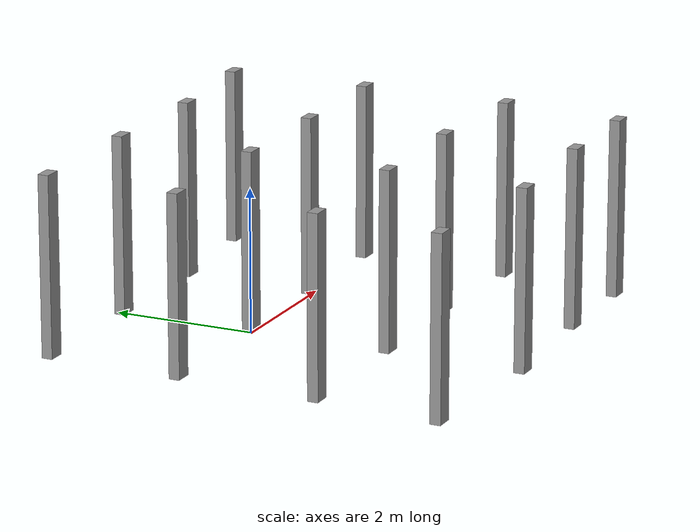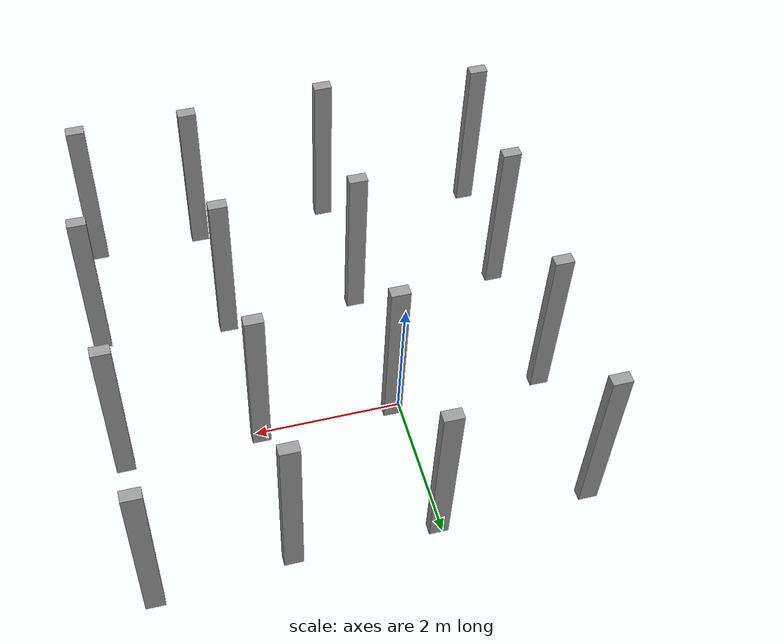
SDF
<?xml version='1.0'?>
<sdf version='1.7'>
  <model name='formation_with_obstacles'>
    <link name='Wall_0'>
      <pose>-1.99 0.045 0 0 -0 0</pose>
      <self_collide>0</self_collide>
      <enable_wind>0</enable_wind>
      <kinematic>0</kinematic>
      <visual name='Wall_0_Visual'>
        <pose>0 0 1.25 0 -0 0</pose>
        <geometry>
          <box>
            <size>0.25 0.15 2.5</size>
          </box>
        </geometry>
        <material>
          <script>
            <uri>file://media/materials/scripts/gazebo.material</uri>
            <name>Gazebo/Grey</name>
          </script>
          <ambient>1 1 1 1</ambient>
          <shader type='pixel'/>
        </material>
        <meta>
          <layer>0</layer>
        </meta>
        <transparency>0</transparency>
        <cast_shadows>1</cast_shadows>
      </visual>
      <collision name='Wall_0_Collision'>
        <laser_retro>0</laser_retro>
        <max_contacts>10</max_contacts>
        <pose>0 0 1.25 0 -0 0</pose>
        <geometry>
          <box>
            <size>0.25 0.15 2.5</size>
          </box>
        </geometry>
        <surface>
          <friction>
            <ode>
              <mu>1</mu>
              <mu2>1</mu2>
              <fdir1>0 0 0</fdir1>
              <slip1>0</slip1>
              <slip2>0</slip2>
            </ode>
            <torsional>
              <coefficient>1</coefficient>
              <patch_radius>0</patch_radius>
              <surface_radius>0</surface_radius>
              <use_patch_radius>1</use_patch_radius>
              <ode>
                <slip>0</slip>
              </ode>
            </torsional>
          </friction>
          <bounce>
            <restitution_coefficient>0</restitution_coefficient>
            <threshold>1e+06</threshold>
          </bounce>
          <contact>
            <collide_without_contact>0</collide_without_contact>
            <collide_without_contact_bitmask>1</collide_without_contact_bitmask>
            <collide_bitmask>1</collide_bitmask>
            <ode>
              <soft_cfm>0</soft_cfm>
              <soft_erp>0.2</soft_erp>
              <kp>1e+13</kp>
              <kd>1</kd>
              <max_vel>0.01</max_vel>
              <min_depth>0</min_depth>
            </ode>
            <bullet>
              <split_impulse>1</split_impulse>
              <split_impulse_penetration_threshold>-0.01</split_impulse_penetration_threshold>
              <soft_cfm>0</soft_cfm>
              <soft_erp>0.2</soft_erp>
              <kp>1e+13</kp>
              <kd>1</kd>
            </bullet>
          </contact>
        </surface>
      </collision>
    </link>
    <link name='Wall_10'>
      <pose>2 -1.915 0 0 -0 0</pose>
      <self_collide>0</self_collide>
      <enable_wind>0</enable_wind>
      <kinematic>0</kinematic>
      <visual name='Wall_10_Visual'>
        <pose>0 0 1.25 0 -0 0</pose>
        <geometry>
          <box>
            <size>0.25 0.15 2.5</size>
          </box>
        </geometry>
        <material>
          <script>
            <uri>file://media/materials/scripts/gazebo.material</uri>
            <name>Gazebo/Grey</name>
          </script>
          <ambient>1 1 1 1</ambient>
          <shader type='pixel'/>
        </material>
        <meta>
          <layer>0</layer>
        </meta>
        <transparency>0</transparency>
        <cast_shadows>1</cast_shadows>
      </visual>
      <collision name='Wall_10_Collision'>
        <laser_retro>0</laser_retro>
        <max_contacts>10</max_contacts>
        <pose>0 0 1.25 0 -0 0</pose>
        <geometry>
          <box>
            <size>0.25 0.15 2.5</size>
          </box>
        </geometry>
        <surface>
          <friction>
            <ode>
              <mu>1</mu>
              <mu2>1</mu2>
              <fdir1>0 0 0</fdir1>
              <slip1>0</slip1>
              <slip2>0</slip2>
            </ode>
            <torsional>
              <coefficient>1</coefficient>
              <patch_radius>0</patch_radius>
              <surface_radius>0</surface_radius>
              <use_patch_radius>1</use_patch_radius>
              <ode>
                <slip>0</slip>
              </ode>
            </torsional>
          </friction>
          <bounce>
            <restitution_coefficient>0</restitution_coefficient>
            <threshold>1e+06</threshold>
          </bounce>
          <contact>
            <collide_without_contact>0</collide_without_contact>
            <collide_without_contact_bitmask>1</collide_without_contact_bitmask>
            <collide_bitmask>1</collide_bitmask>
            <ode>
              <soft_cfm>0</soft_cfm>
              <soft_erp>0.2</soft_erp>
              <kp>1e+13</kp>
              <kd>1</kd>
              <max_vel>0.01</max_vel>
              <min_depth>0</min_depth>
            </ode>
            <bullet>
              <split_impulse>1</split_impulse>
              <split_impulse_penetration_threshold>-0.01</split_impulse_penetration_threshold>
              <soft_cfm>0</soft_cfm>
              <soft_erp>0.2</soft_erp>
              <kp>1e+13</kp>
              <kd>1</kd>
            </bullet>
          </contact>
        </surface>
      </collision>
    </link>
    <link name='Wall_12'>
      <pose>-1.97 1.925 0 0 -0 0</pose>
      <self_collide>0</self_collide>
      <enable_wind>0</enable_wind>
      <kinematic>0</kinematic>
      <visual name='Wall_12_Visual'>
        <pose>0 0 1.25 0 -0 0</pose>
        <geometry>
          <box>
            <size>0.25 0.15 2.5</size>
          </box>
        </geometry>
        <material>
          <script>
            <uri>file://media/materials/scripts/gazebo.material</uri>
            <name>Gazebo/Grey</name>
          </script>
          <ambient>1 1 1 1</ambient>
          <shader type='pixel'/>
        </material>
        <meta>
          <layer>0</layer>
        </meta>
        <transparency>0</transparency>
        <cast_shadows>1</cast_shadows>
      </visual>
      <collision name='Wall_12_Collision'>
        <laser_retro>0</laser_retro>
        <max_contacts>10</max_contacts>
        <pose>0 0 1.25 0 -0 0</pose>
        <geometry>
          <box>
            <size>0.25 0.15 2.5</size>
          </box>
        </geometry>
        <surface>
          <friction>
            <ode>
              <mu>1</mu>
              <mu2>1</mu2>
              <fdir1>0 0 0</fdir1>
              <slip1>0</slip1>
              <slip2>0</slip2>
            </ode>
            <torsional>
              <coefficient>1</coefficient>
              <patch_radius>0</patch_radius>
              <surface_radius>0</surface_radius>
              <use_patch_radius>1</use_patch_radius>
              <ode>
                <slip>0</slip>
              </ode>
            </torsional>
          </friction>
          <bounce>
            <restitution_coefficient>0</restitution_coefficient>
            <threshold>1e+06</threshold>
          </bounce>
          <contact>
            <collide_without_contact>0</collide_without_contact>
            <collide_without_contact_bitmask>1</collide_without_contact_bitmask>
            <collide_bitmask>1</collide_bitmask>
            <ode>
              <soft_cfm>0</soft_cfm>
              <soft_erp>0.2</soft_erp>
              <kp>1e+13</kp>
              <kd>1</kd>
              <max_vel>0.01</max_vel>
              <min_depth>0</min_depth>
            </ode>
            <bullet>
              <split_impulse>1</split_impulse>
              <split_impulse_penetration_threshold>-0.01</split_impulse_penetration_threshold>
              <soft_cfm>0</soft_cfm>
              <soft_erp>0.2</soft_erp>
              <kp>1e+13</kp>
              <kd>1</kd>
            </bullet>
          </contact>
        </surface>
      </collision>
    </link>
    <link name='Wall_14'>
      <pose>0.05 1.945 0 0 -0 0</pose>
      <self_collide>0</self_collide>
      <enable_wind>0</enable_wind>
      <kinematic>0</kinematic>
      <visual name='Wall_14_Visual'>
        <pose>0 0 1.25 0 -0 0</pose>
        <geometry>
          <box>
            <size>0.25 0.15 2.5</size>
          </box>
        </geometry>
        <material>
          <script>
            <uri>file://media/materials/scripts/gazebo.material</uri>
            <name>Gazebo/Grey</name>
          </script>
          <ambient>1 1 1 1</ambient>
          <shader type='pixel'/>
        </material>
        <meta>
          <layer>0</layer>
        </meta>
        <transparency>0</transparency>
        <cast_shadows>1</cast_shadows>
      </visual>
      <collision name='Wall_14_Collision'>
        <laser_retro>0</laser_retro>
        <max_contacts>10</max_contacts>
        <pose>0 0 1.25 0 -0 0</pose>
        <geometry>
          <box>
            <size>0.25 0.15 2.5</size>
          </box>
        </geometry>
        <surface>
          <friction>
            <ode>
              <mu>1</mu>
              <mu2>1</mu2>
              <fdir1>0 0 0</fdir1>
              <slip1>0</slip1>
              <slip2>0</slip2>
            </ode>
            <torsional>
              <coefficient>1</coefficient>
              <patch_radius>0</patch_radius>
              <surface_radius>0</surface_radius>
              <use_patch_radius>1</use_patch_radius>
              <ode>
                <slip>0</slip>
              </ode>
            </torsional>
          </friction>
          <bounce>
            <restitution_coefficient>0</restitution_coefficient>
            <threshold>1e+06</threshold>
          </bounce>
          <contact>
            <collide_without_contact>0</collide_without_contact>
            <collide_without_contact_bitmask>1</collide_without_contact_bitmask>
            <collide_bitmask>1</collide_bitmask>
            <ode>
              <soft_cfm>0</soft_cfm>
              <soft_erp>0.2</soft_erp>
              <kp>1e+13</kp>
              <kd>1</kd>
              <max_vel>0.01</max_vel>
              <min_depth>0</min_depth>
            </ode>
            <bullet>
              <split_impulse>1</split_impulse>
              <split_impulse_penetration_threshold>-0.01</split_impulse_penetration_threshold>
              <soft_cfm>0</soft_cfm>
              <soft_erp>0.2</soft_erp>
              <kp>1e+13</kp>
              <kd>1</kd>
            </bullet>
          </contact>
        </surface>
      </collision>
    </link>
    <link name='Wall_16'>
      <pose>1.93 1.935 0 0 -0 0</pose>
      <self_collide>0</self_collide>
      <enable_wind>0</enable_wind>
      <kinematic>0</kinematic>
      <visual name='Wall_16_Visual'>
        <pose>0 0 1.25 0 -0 0</pose>
        <geometry>
          <box>
            <size>0.25 0.15 2.5</size>
          </box>
        </geometry>
        <material>
          <script>
            <uri>file://media/materials/scripts/gazebo.material</uri>
            <name>Gazebo/Grey</name>
          </script>
          <ambient>1 1 1 1</ambient>
          <shader type='pixel'/>
        </material>
        <meta>
          <layer>0</layer>
        </meta>
        <transparency>0</transparency>
        <cast_shadows>1</cast_shadows>
      </visual>
      <collision name='Wall_16_Collision'>
        <laser_retro>0</laser_retro>
        <max_contacts>10</max_contacts>
        <pose>0 0 1.25 0 -0 0</pose>
        <geometry>
          <box>
            <size>0.25 0.15 2.5</size>
          </box>
        </geometry>
        <surface>
          <friction>
            <ode>
              <mu>1</mu>
              <mu2>1</mu2>
              <fdir1>0 0 0</fdir1>
              <slip1>0</slip1>
              <slip2>0</slip2>
            </ode>
            <torsional>
              <coefficient>1</coefficient>
              <patch_radius>0</patch_radius>
              <surface_radius>0</surface_radius>
              <use_patch_radius>1</use_patch_radius>
              <ode>
                <slip>0</slip>
              </ode>
            </torsional>
          </friction>
          <bounce>
            <restitution_coefficient>0</restitution_coefficient>
            <threshold>1e+06</threshold>
          </bounce>
          <contact>
            <collide_without_contact>0</collide_without_contact>
            <collide_without_contact_bitmask>1</collide_without_contact_bitmask>
            <collide_bitmask>1</collide_bitmask>
            <ode>
              <soft_cfm>0</soft_cfm>
              <soft_erp>0.2</soft_erp>
              <kp>1e+13</kp>
              <kd>1</kd>
              <max_vel>0.01</max_vel>
              <min_depth>0</min_depth>
            </ode>
            <bullet>
              <split_impulse>1</split_impulse>
              <split_impulse_penetration_threshold>-0.01</split_impulse_penetration_threshold>
              <soft_cfm>0</soft_cfm>
              <soft_erp>0.2</soft_erp>
              <kp>1e+13</kp>
              <kd>1</kd>
            </bullet>
          </contact>
        </surface>
      </collision>
    </link>
    <link name='Wall_2'>
      <pose>-2 -1.935 0 0 -0 0</pose>
      <self_collide>0</self_collide>
      <enable_wind>0</enable_wind>
      <kinematic>0</kinematic>
      <visual name='Wall_2_Visual'>
        <pose>0 0 1.25 0 -0 0</pose>
        <geometry>
          <box>
            <size>0.25 0.15 2.5</size>
          </box>
        </geometry>
        <material>
          <script>
            <uri>file://media/materials/scripts/gazebo.material</uri>
            <name>Gazebo/Grey</name>
          </script>
          <ambient>1 1 1 1</ambient>
          <shader type='pixel'/>
        </material>
        <meta>
          <layer>0</layer>
        </meta>
        <transparency>0</transparency>
        <cast_shadows>1</cast_shadows>
      </visual>
      <collision name='Wall_2_Collision'>
        <laser_retro>0</laser_retro>
        <max_contacts>10</max_contacts>
        <pose>0 0 1.25 0 -0 0</pose>
        <geometry>
          <box>
            <size>0.25 0.15 2.5</size>
          </box>
        </geometry>
        <surface>
          <friction>
            <ode>
              <mu>1</mu>
              <mu2>1</mu2>
              <fdir1>0 0 0</fdir1>
              <slip1>0</slip1>
              <slip2>0</slip2>
            </ode>
            <torsional>
              <coefficient>1</coefficient>
              <patch_radius>0</patch_radius>
              <surface_radius>0</surface_radius>
              <use_patch_radius>1</use_patch_radius>
              <ode>
                <slip>0</slip>
              </ode>
            </torsional>
          </friction>
          <bounce>
            <restitution_coefficient>0</restitution_coefficient>
            <threshold>1e+06</threshold>
          </bounce>
          <contact>
            <collide_without_contact>0</collide_without_contact>
            <collide_without_contact_bitmask>1</collide_without_contact_bitmask>
            <collide_bitmask>1</collide_bitmask>
            <ode>
              <soft_cfm>0</soft_cfm>
              <soft_erp>0.2</soft_erp>
              <kp>1e+13</kp>
              <kd>1</kd>
              <max_vel>0.01</max_vel>
              <min_depth>0</min_depth>
            </ode>
            <bullet>
              <split_impulse>1</split_impulse>
              <split_impulse_penetration_threshold>-0.01</split_impulse_penetration_threshold>
              <soft_cfm>0</soft_cfm>
              <soft_erp>0.2</soft_erp>
              <kp>1e+13</kp>
              <kd>1</kd>
            </bullet>
          </contact>
        </surface>
      </collision>
    </link>
    <link name='Wall_2_clone'>
      <pose>-2.1076 -3.67731 0 0 -0 0</pose>
      <self_collide>0</self_collide>
      <enable_wind>0</enable_wind>
      <kinematic>0</kinematic>
      <visual name='Wall_2_Visual'>
        <pose>0 0 1.25 0 -0 0</pose>
        <geometry>
          <box>
            <size>0.25 0.15 2.5</size>
          </box>
        </geometry>
        <material>
          <script>
            <uri>file://media/materials/scripts/gazebo.material</uri>
            <name>Gazebo/Grey</name>
          </script>
          <ambient>1 1 1 1</ambient>
          <shader type='pixel'/>
        </material>
        <meta>
          <layer>0</layer>
        </meta>
        <transparency>0</transparency>
        <cast_shadows>1</cast_shadows>
      </visual>
      <collision name='Wall_2_Collision'>
        <laser_retro>0</laser_retro>
        <max_contacts>10</max_contacts>
        <pose>0 0 1.25 0 -0 0</pose>
        <geometry>
          <box>
            <size>0.25 0.15 2.5</size>
          </box>
        </geometry>
        <surface>
          <friction>
            <ode>
              <mu>1</mu>
              <mu2>1</mu2>
              <fdir1>0 0 0</fdir1>
              <slip1>0</slip1>
              <slip2>0</slip2>
            </ode>
            <torsional>
              <coefficient>1</coefficient>
              <patch_radius>0</patch_radius>
              <surface_radius>0</surface_radius>
              <use_patch_radius>1</use_patch_radius>
              <ode>
                <slip>0</slip>
              </ode>
            </torsional>
          </friction>
          <bounce>
            <restitution_coefficient>0</restitution_coefficient>
            <threshold>1e+06</threshold>
          </bounce>
          <contact>
            <collide_without_contact>0</collide_without_contact>
            <collide_without_contact_bitmask>1</collide_without_contact_bitmask>
            <collide_bitmask>1</collide_bitmask>
            <ode>
              <soft_cfm>0</soft_cfm>
              <soft_erp>0.2</soft_erp>
              <kp>1e+13</kp>
              <kd>1</kd>
              <max_vel>0.01</max_vel>
              <min_depth>0</min_depth>
            </ode>
            <bullet>
              <split_impulse>1</split_impulse>
              <split_impulse_penetration_threshold>-0.01</split_impulse_penetration_threshold>
              <soft_cfm>0</soft_cfm>
              <soft_erp>0.2</soft_erp>
              <kp>1e+13</kp>
              <kd>1</kd>
            </bullet>
          </contact>
        </surface>
      </collision>
    </link>
    <link name='Wall_2_clone_0'>
      <pose>0.131617 -3.86148 0 0 -0 0</pose>
      <self_collide>0</self_collide>
      <enable_wind>0</enable_wind>
      <kinematic>0</kinematic>
      <visual name='Wall_2_Visual'>
        <pose>0 0 1.25 0 -0 0</pose>
        <geometry>
          <box>
            <size>0.25 0.15 2.5</size>
          </box>
        </geometry>
        <material>
          <script>
            <uri>file://media/materials/scripts/gazebo.material</uri>
            <name>Gazebo/Grey</name>
          </script>
          <ambient>1 1 1 1</ambient>
          <shader type='pixel'/>
        </material>
        <meta>
          <layer>0</layer>
        </meta>
        <transparency>0</transparency>
        <cast_shadows>1</cast_shadows>
      </visual>
      <collision name='Wall_2_Collision'>
        <laser_retro>0</laser_retro>
        <max_contacts>10</max_contacts>
        <pose>0 0 1.25 0 -0 0</pose>
        <geometry>
          <box>
            <size>0.25 0.15 2.5</size>
          </box>
        </geometry>
        <surface>
          <friction>
            <ode>
              <mu>1</mu>
              <mu2>1</mu2>
              <fdir1>0 0 0</fdir1>
              <slip1>0</slip1>
              <slip2>0</slip2>
            </ode>
            <torsional>
              <coefficient>1</coefficient>
              <patch_radius>0</patch_radius>
              <surface_radius>0</surface_radius>
              <use_patch_radius>1</use_patch_radius>
              <ode>
                <slip>0</slip>
              </ode>
            </torsional>
          </friction>
          <bounce>
            <restitution_coefficient>0</restitution_coefficient>
            <threshold>1e+06</threshold>
          </bounce>
          <contact>
            <collide_without_contact>0</collide_without_contact>
            <collide_without_contact_bitmask>1</collide_without_contact_bitmask>
            <collide_bitmask>1</collide_bitmask>
            <ode>
              <soft_cfm>0</soft_cfm>
              <soft_erp>0.2</soft_erp>
              <kp>1e+13</kp>
              <kd>1</kd>
              <max_vel>0.01</max_vel>
              <min_depth>0</min_depth>
            </ode>
            <bullet>
              <split_impulse>1</split_impulse>
              <split_impulse_penetration_threshold>-0.01</split_impulse_penetration_threshold>
              <soft_cfm>0</soft_cfm>
              <soft_erp>0.2</soft_erp>
              <kp>1e+13</kp>
              <kd>1</kd>
            </bullet>
          </contact>
        </surface>
      </collision>
    </link>
    <link name='Wall_2_clone_1'>
      <pose>2.08625 -3.75915 0 0 -0 0</pose>
      <self_collide>0</self_collide>
      <enable_wind>0</enable_wind>
      <kinematic>0</kinematic>
      <visual name='Wall_2_Visual'>
        <pose>0 0 1.25 0 -0 0</pose>
        <geometry>
          <box>
            <size>0.25 0.15 2.5</size>
          </box>
        </geometry>
        <material>
          <script>
            <uri>file://media/materials/scripts/gazebo.material</uri>
            <name>Gazebo/Grey</name>
          </script>
          <ambient>1 1 1 1</ambient>
          <shader type='pixel'/>
        </material>
        <meta>
          <layer>0</layer>
        </meta>
        <transparency>0</transparency>
        <cast_shadows>1</cast_shadows>
      </visual>
      <collision name='Wall_2_Collision'>
        <laser_retro>0</laser_retro>
        <max_contacts>10</max_contacts>
        <pose>0 0 1.25 0 -0 0</pose>
        <geometry>
          <box>
            <size>0.25 0.15 2.5</size>
          </box>
        </geometry>
        <surface>
          <friction>
            <ode>
              <mu>1</mu>
              <mu2>1</mu2>
              <fdir1>0 0 0</fdir1>
              <slip1>0</slip1>
              <slip2>0</slip2>
            </ode>
            <torsional>
              <coefficient>1</coefficient>
              <patch_radius>0</patch_radius>
              <surface_radius>0</surface_radius>
              <use_patch_radius>1</use_patch_radius>
              <ode>
                <slip>0</slip>
              </ode>
            </torsional>
          </friction>
          <bounce>
            <restitution_coefficient>0</restitution_coefficient>
            <threshold>1e+06</threshold>
          </bounce>
          <contact>
            <collide_without_contact>0</collide_without_contact>
            <collide_without_contact_bitmask>1</collide_without_contact_bitmask>
            <collide_bitmask>1</collide_bitmask>
            <ode>
              <soft_cfm>0</soft_cfm>
              <soft_erp>0.2</soft_erp>
              <kp>1e+13</kp>
              <kd>1</kd>
              <max_vel>0.01</max_vel>
              <min_depth>0</min_depth>
            </ode>
            <bullet>
              <split_impulse>1</split_impulse>
              <split_impulse_penetration_threshold>-0.01</split_impulse_penetration_threshold>
              <soft_cfm>0</soft_cfm>
              <soft_erp>0.2</soft_erp>
              <kp>1e+13</kp>
              <kd>1</kd>
            </bullet>
          </contact>
        </surface>
      </collision>
    </link>
    <link name='Wall_2_clone_2'>
      <pose>3.62099 -3.75309 0 0 -0 0</pose>
      <self_collide>0</self_collide>
      <enable_wind>0</enable_wind>
      <kinematic>0</kinematic>
      <visual name='Wall_2_Visual'>
        <pose>0 0 1.25 0 -0 0</pose>
        <geometry>
          <box>
            <size>0.25 0.15 2.5</size>
          </box>
        </geometry>
        <material>
          <script>
            <uri>file://media/materials/scripts/gazebo.material</uri>
            <name>Gazebo/Grey</name>
          </script>
          <ambient>1 1 1 1</ambient>
          <shader type='pixel'/>
        </material>
        <meta>
          <layer>0</layer>
        </meta>
        <transparency>0</transparency>
        <cast_shadows>1</cast_shadows>
      </visual>
      <collision name='Wall_2_Collision'>
        <laser_retro>0</laser_retro>
        <max_contacts>10</max_contacts>
        <pose>0 0 1.25 0 -0 0</pose>
        <geometry>
          <box>
            <size>0.25 0.15 2.5</size>
          </box>
        </geometry>
        <surface>
          <friction>
            <ode>
              <mu>1</mu>
              <mu2>1</mu2>
              <fdir1>0 0 0</fdir1>
              <slip1>0</slip1>
              <slip2>0</slip2>
            </ode>
            <torsional>
              <coefficient>1</coefficient>
              <patch_radius>0</patch_radius>
              <surface_radius>0</surface_radius>
              <use_patch_radius>1</use_patch_radius>
              <ode>
                <slip>0</slip>
              </ode>
            </torsional>
          </friction>
          <bounce>
            <restitution_coefficient>0</restitution_coefficient>
            <threshold>1e+06</threshold>
          </bounce>
          <contact>
            <collide_without_contact>0</collide_without_contact>
            <collide_without_contact_bitmask>1</collide_without_contact_bitmask>
            <collide_bitmask>1</collide_bitmask>
            <ode>
              <soft_cfm>0</soft_cfm>
              <soft_erp>0.2</soft_erp>
              <kp>1e+13</kp>
              <kd>1</kd>
              <max_vel>0.01</max_vel>
              <min_depth>0</min_depth>
            </ode>
            <bullet>
              <split_impulse>1</split_impulse>
              <split_impulse_penetration_threshold>-0.01</split_impulse_penetration_threshold>
              <soft_cfm>0</soft_cfm>
              <soft_erp>0.2</soft_erp>
              <kp>1e+13</kp>
              <kd>1</kd>
            </bullet>
          </contact>
        </surface>
      </collision>
    </link>
    <link name='Wall_2_clone_3'>
      <pose>3.80035 -2.03301 0 0 -0 0</pose>
      <self_collide>0</self_collide>
      <enable_wind>0</enable_wind>
      <kinematic>0</kinematic>
      <visual name='Wall_2_Visual'>
        <pose>0 0 1.25 0 -0 0</pose>
        <geometry>
          <box>
            <size>0.25 0.15 2.5</size>
          </box>
        </geometry>
        <material>
          <script>
            <uri>file://media/materials/scripts/gazebo.material</uri>
            <name>Gazebo/Grey</name>
          </script>
          <ambient>1 1 1 1</ambient>
          <shader type='pixel'/>
        </material>
        <meta>
          <layer>0</layer>
        </meta>
        <transparency>0</transparency>
        <cast_shadows>1</cast_shadows>
      </visual>
      <collision name='Wall_2_Collision'>
        <laser_retro>0</laser_retro>
        <max_contacts>10</max_contacts>
        <pose>0 0 1.25 0 -0 0</pose>
        <geometry>
          <box>
            <size>0.25 0.15 2.5</size>
          </box>
        </geometry>
        <surface>
          <friction>
            <ode>
              <mu>1</mu>
              <mu2>1</mu2>
              <fdir1>0 0 0</fdir1>
              <slip1>0</slip1>
              <slip2>0</slip2>
            </ode>
            <torsional>
              <coefficient>1</coefficient>
              <patch_radius>0</patch_radius>
              <surface_radius>0</surface_radius>
              <use_patch_radius>1</use_patch_radius>
              <ode>
                <slip>0</slip>
              </ode>
            </torsional>
          </friction>
          <bounce>
            <restitution_coefficient>0</restitution_coefficient>
            <threshold>1e+06</threshold>
          </bounce>
          <contact>
            <collide_without_contact>0</collide_without_contact>
            <collide_without_contact_bitmask>1</collide_without_contact_bitmask>
            <collide_bitmask>1</collide_bitmask>
            <ode>
              <soft_cfm>0</soft_cfm>
              <soft_erp>0.2</soft_erp>
              <kp>1e+13</kp>
              <kd>1</kd>
              <max_vel>0.01</max_vel>
              <min_depth>0</min_depth>
            </ode>
            <bullet>
              <split_impulse>1</split_impulse>
              <split_impulse_penetration_threshold>-0.01</split_impulse_penetration_threshold>
              <soft_cfm>0</soft_cfm>
              <soft_erp>0.2</soft_erp>
              <kp>1e+13</kp>
              <kd>1</kd>
            </bullet>
          </contact>
        </surface>
      </collision>
    </link>
    <link name='Wall_2_clone_4'>
      <pose>3.76823 0.095392 0 0 -0 0</pose>
      <self_collide>0</self_collide>
      <enable_wind>0</enable_wind>
      <kinematic>0</kinematic>
      <visual name='Wall_2_Visual'>
        <pose>0 0 1.25 0 -0 0</pose>
        <geometry>
          <box>
            <size>0.25 0.15 2.5</size>
          </box>
        </geometry>
        <material>
          <script>
            <uri>file://media/materials/scripts/gazebo.material</uri>
            <name>Gazebo/Grey</name>
          </script>
          <ambient>1 1 1 1</ambient>
          <shader type='pixel'/>
        </material>
        <meta>
          <layer>0</layer>
        </meta>
        <transparency>0</transparency>
        <cast_shadows>1</cast_shadows>
      </visual>
      <collision name='Wall_2_Collision'>
        <laser_retro>0</laser_retro>
        <max_contacts>10</max_contacts>
        <pose>0 0 1.25 0 -0 0</pose>
        <geometry>
          <box>
            <size>0.25 0.15 2.5</size>
          </box>
        </geometry>
        <surface>
          <friction>
            <ode>
              <mu>1</mu>
              <mu2>1</mu2>
              <fdir1>0 0 0</fdir1>
              <slip1>0</slip1>
              <slip2>0</slip2>
            </ode>
            <torsional>
              <coefficient>1</coefficient>
              <patch_radius>0</patch_radius>
              <surface_radius>0</surface_radius>
              <use_patch_radius>1</use_patch_radius>
              <ode>
                <slip>0</slip>
              </ode>
            </torsional>
          </friction>
          <bounce>
            <restitution_coefficient>0</restitution_coefficient>
            <threshold>1e+06</threshold>
          </bounce>
          <contact>
            <collide_without_contact>0</collide_without_contact>
            <collide_without_contact_bitmask>1</collide_without_contact_bitmask>
            <collide_bitmask>1</collide_bitmask>
            <ode>
              <soft_cfm>0</soft_cfm>
              <soft_erp>0.2</soft_erp>
              <kp>1e+13</kp>
              <kd>1</kd>
              <max_vel>0.01</max_vel>
              <min_depth>0</min_depth>
            </ode>
            <bullet>
              <split_impulse>1</split_impulse>
              <split_impulse_penetration_threshold>-0.01</split_impulse_penetration_threshold>
              <soft_cfm>0</soft_cfm>
              <soft_erp>0.2</soft_erp>
              <kp>1e+13</kp>
              <kd>1</kd>
            </bullet>
          </contact>
        </surface>
      </collision>
    </link>
    <link name='Wall_2_clone_5'>
      <pose>3.69411 2.10546 0 0 -0 0</pose>
      <self_collide>0</self_collide>
      <enable_wind>0</enable_wind>
      <kinematic>0</kinematic>
      <visual name='Wall_2_Visual'>
        <pose>0 0 1.25 0 -0 0</pose>
        <geometry>
          <box>
            <size>0.25 0.15 2.5</size>
          </box>
        </geometry>
        <material>
          <script>
            <uri>file://media/materials/scripts/gazebo.material</uri>
            <name>Gazebo/Grey</name>
          </script>
          <ambient>1 1 1 1</ambient>
          <shader type='pixel'/>
        </material>
        <meta>
          <layer>0</layer>
        </meta>
        <transparency>0</transparency>
        <cast_shadows>1</cast_shadows>
      </visual>
      <collision name='Wall_2_Collision'>
        <laser_retro>0</laser_retro>
        <max_contacts>10</max_contacts>
        <pose>0 0 1.25 0 -0 0</pose>
        <geometry>
          <box>
            <size>0.25 0.15 2.5</size>
          </box>
        </geometry>
        <surface>
          <friction>
            <ode>
              <mu>1</mu>
              <mu2>1</mu2>
              <fdir1>0 0 0</fdir1>
              <slip1>0</slip1>
              <slip2>0</slip2>
            </ode>
            <torsional>
              <coefficient>1</coefficient>
              <patch_radius>0</patch_radius>
              <surface_radius>0</surface_radius>
              <use_patch_radius>1</use_patch_radius>
              <ode>
                <slip>0</slip>
              </ode>
            </torsional>
          </friction>
          <bounce>
            <restitution_coefficient>0</restitution_coefficient>
            <threshold>1e+06</threshold>
          </bounce>
          <contact>
            <collide_without_contact>0</collide_without_contact>
            <collide_without_contact_bitmask>1</collide_without_contact_bitmask>
            <collide_bitmask>1</collide_bitmask>
            <ode>
              <soft_cfm>0</soft_cfm>
              <soft_erp>0.2</soft_erp>
              <kp>1e+13</kp>
              <kd>1</kd>
              <max_vel>0.01</max_vel>
              <min_depth>0</min_depth>
            </ode>
            <bullet>
              <split_impulse>1</split_impulse>
              <split_impulse_penetration_threshold>-0.01</split_impulse_penetration_threshold>
              <soft_cfm>0</soft_cfm>
              <soft_erp>0.2</soft_erp>
              <kp>1e+13</kp>
              <kd>1</kd>
            </bullet>
          </contact>
        </surface>
      </collision>
    </link>
    <link name='Wall_4'>
      <pose>0.12 0.055 0 0 -0 0</pose>
      <self_collide>0</self_collide>
      <enable_wind>0</enable_wind>
      <kinematic>0</kinematic>
      <visual name='Wall_4_Visual'>
        <pose>0 0 1.25 0 -0 0</pose>
        <geometry>
          <box>
            <size>0.25 0.15 2.5</size>
          </box>
        </geometry>
        <material>
          <script>
            <uri>file://media/materials/scripts/gazebo.material</uri>
            <name>Gazebo/Grey</name>
          </script>
          <ambient>1 1 1 1</ambient>
          <shader type='pixel'/>
        </material>
        <meta>
          <layer>0</layer>
        </meta>
        <transparency>0</transparency>
        <cast_shadows>1</cast_shadows>
      </visual>
      <collision name='Wall_4_Collision'>
        <laser_retro>0</laser_retro>
        <max_contacts>10</max_contacts>
        <pose>0 0 1.25 0 -0 0</pose>
        <geometry>
          <box>
            <size>0.25 0.15 2.5</size>
          </box>
        </geometry>
        <surface>
          <friction>
            <ode>
              <mu>1</mu>
              <mu2>1</mu2>
              <fdir1>0 0 0</fdir1>
              <slip1>0</slip1>
              <slip2>0</slip2>
            </ode>
            <torsional>
              <coefficient>1</coefficient>
              <patch_radius>0</patch_radius>
              <surface_radius>0</surface_radius>
              <use_patch_radius>1</use_patch_radius>
              <ode>
                <slip>0</slip>
              </ode>
            </torsional>
          </friction>
          <bounce>
            <restitution_coefficient>0</restitution_coefficient>
            <threshold>1e+06</threshold>
          </bounce>
          <contact>
            <collide_without_contact>0</collide_without_contact>
            <collide_without_contact_bitmask>1</collide_without_contact_bitmask>
            <collide_bitmask>1</collide_bitmask>
            <ode>
              <soft_cfm>0</soft_cfm>
              <soft_erp>0.2</soft_erp>
              <kp>1e+13</kp>
              <kd>1</kd>
              <max_vel>0.01</max_vel>
              <min_depth>0</min_depth>
            </ode>
            <bullet>
              <split_impulse>1</split_impulse>
              <split_impulse_penetration_threshold>-0.01</split_impulse_penetration_threshold>
              <soft_cfm>0</soft_cfm>
              <soft_erp>0.2</soft_erp>
              <kp>1e+13</kp>
              <kd>1</kd>
            </bullet>
          </contact>
        </surface>
      </collision>
    </link>
    <link name='Wall_6'>
      <pose>0.12 -1.945 0 0 -0 0</pose>
      <self_collide>0</self_collide>
      <enable_wind>0</enable_wind>
      <kinematic>0</kinematic>
      <visual name='Wall_6_Visual'>
        <pose>0 0 1.25 0 -0 0</pose>
        <geometry>
          <box>
            <size>0.25 0.15 2.5</size>
          </box>
        </geometry>
        <material>
          <script>
            <uri>file://media/materials/scripts/gazebo.material</uri>
            <name>Gazebo/Grey</name>
          </script>
          <ambient>1 1 1 1</ambient>
          <shader type='pixel'/>
        </material>
        <meta>
          <layer>0</layer>
        </meta>
        <transparency>0</transparency>
        <cast_shadows>1</cast_shadows>
      </visual>
      <collision name='Wall_6_Collision'>
        <laser_retro>0</laser_retro>
        <max_contacts>10</max_contacts>
        <pose>0 0 1.25 0 -0 0</pose>
        <geometry>
          <box>
            <size>0.25 0.15 2.5</size>
          </box>
        </geometry>
        <surface>
          <friction>
            <ode>
              <mu>1</mu>
              <mu2>1</mu2>
              <fdir1>0 0 0</fdir1>
              <slip1>0</slip1>
              <slip2>0</slip2>
            </ode>
            <torsional>
              <coefficient>1</coefficient>
              <patch_radius>0</patch_radius>
              <surface_radius>0</surface_radius>
              <use_patch_radius>1</use_patch_radius>
              <ode>
                <slip>0</slip>
              </ode>
            </torsional>
          </friction>
          <bounce>
            <restitution_coefficient>0</restitution_coefficient>
            <threshold>1e+06</threshold>
          </bounce>
          <contact>
            <collide_without_contact>0</collide_without_contact>
            <collide_without_contact_bitmask>1</collide_without_contact_bitmask>
            <collide_bitmask>1</collide_bitmask>
            <ode>
              <soft_cfm>0</soft_cfm>
              <soft_erp>0.2</soft_erp>
              <kp>1e+13</kp>
              <kd>1</kd>
              <max_vel>0.01</max_vel>
              <min_depth>0</min_depth>
            </ode>
            <bullet>
              <split_impulse>1</split_impulse>
              <split_impulse_penetration_threshold>-0.01</split_impulse_penetration_threshold>
              <soft_cfm>0</soft_cfm>
              <soft_erp>0.2</soft_erp>
              <kp>1e+13</kp>
              <kd>1</kd>
            </bullet>
          </contact>
        </surface>
      </collision>
    </link>
    <link name='Wall_8'>
      <pose>1.94 0.065 0 0 -0 0</pose>
      <self_collide>0</self_collide>
      <enable_wind>0</enable_wind>
      <kinematic>0</kinematic>
      <visual name='Wall_8_Visual'>
        <pose>0 0 1.25 0 -0 0</pose>
        <geometry>
          <box>
            <size>0.25 0.15 2.5</size>
          </box>
        </geometry>
        <material>
          <script>
            <uri>file://media/materials/scripts/gazebo.material</uri>
            <name>Gazebo/Grey</name>
          </script>
          <ambient>1 1 1 1</ambient>
          <shader type='pixel'/>
        </material>
        <meta>
          <layer>0</layer>
        </meta>
        <transparency>0</transparency>
        <cast_shadows>1</cast_shadows>
      </visual>
      <collision name='Wall_8_Collision'>
        <laser_retro>0</laser_retro>
        <max_contacts>10</max_contacts>
        <pose>0 0 1.25 0 -0 0</pose>
        <geometry>
          <box>
            <size>0.25 0.15 2.5</size>
          </box>
        </geometry>
        <surface>
          <friction>
            <ode>
              <mu>1</mu>
              <mu2>1</mu2>
              <fdir1>0 0 0</fdir1>
              <slip1>0</slip1>
              <slip2>0</slip2>
            </ode>
            <torsional>
              <coefficient>1</coefficient>
              <patch_radius>0</patch_radius>
              <surface_radius>0</surface_radius>
              <use_patch_radius>1</use_patch_radius>
              <ode>
                <slip>0</slip>
              </ode>
            </torsional>
          </friction>
          <bounce>
            <restitution_coefficient>0</restitution_coefficient>
            <threshold>1e+06</threshold>
          </bounce>
          <contact>
            <collide_without_contact>0</collide_without_contact>
            <collide_without_contact_bitmask>1</collide_without_contact_bitmask>
            <collide_bitmask>1</collide_bitmask>
            <ode>
              <soft_cfm>0</soft_cfm>
              <soft_erp>0.2</soft_erp>
              <kp>1e+13</kp>
              <kd>1</kd>
              <max_vel>0.01</max_vel>
              <min_depth>0</min_depth>
            </ode>
            <bullet>
              <split_impulse>1</split_impulse>
              <split_impulse_penetration_threshold>-0.01</split_impulse_penetration_threshold>
              <soft_cfm>0</soft_cfm>
              <soft_erp>0.2</soft_erp>
              <kp>1e+13</kp>
              <kd>1</kd>
            </bullet>
          </contact>
        </surface>
      </collision>
    </link>
    <static>1</static>
    <allow_auto_disable>1</allow_auto_disable>
  </model>
</sdf>
